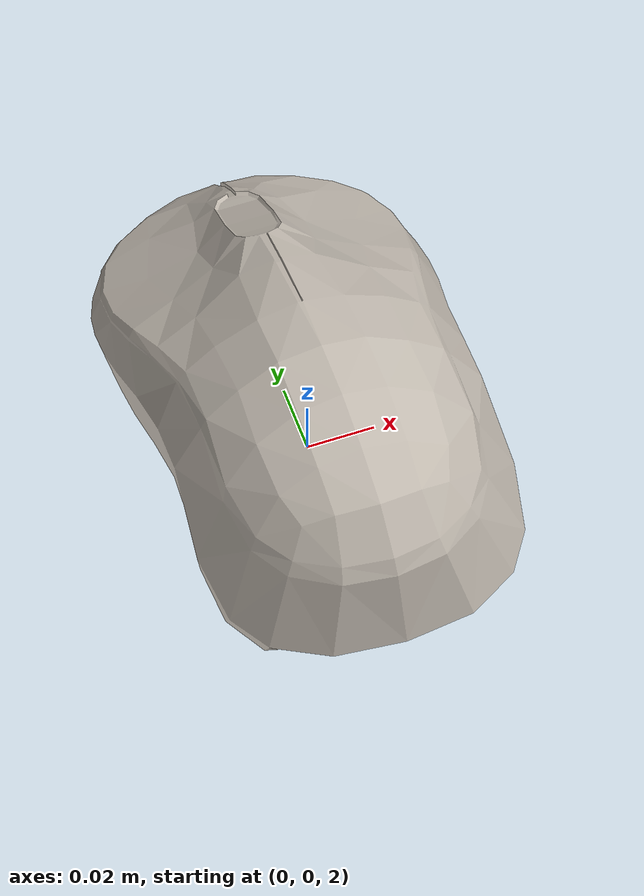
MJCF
<mujoco model="mouse">
  <compiler meshdir="./" fitaabb="true" />

  <visual>
    <headlight diffuse="0.6 0.6 0.6" ambient="0.1 0.1 0.1" specular="0 0 0" />
    <rgba haze="0.15 0.25 0.35 1" />
    <global azimuth="120" elevation="-20" />
  </visual>

  <asset>
    <texture name="mouse_texture" type="2d" file="./logitech_mouse_texture.png" />
    <material name="mouse_mat" texture="mouse_texture" specular="0.5" shininess="0.5" />
    <mesh name="mouse_obj" file="logitech_mouse.obj" scale="0.01 0.01 0.01" />

    <!-- Sky -->
    <texture type="skybox" builtin="gradient" rgb1="0.1 0.2 0.3" rgb2="0 0 0" width="512"
      height="3072" />
    <!-- Ground -->
    <texture type="2d" name="groundplane" builtin="checker" mark="edge" rgb1="0.3 0.4 0.5"
      rgb2="0.1 0.2 0.3" markrgb="0.8 0.8 0.8" width="300" height="300" />
    <material name="groundplane" texture="groundplane" texuniform="true" texrepeat="2 2"
      reflectance="0.2" />
  </asset>

  <worldbody>
    <light pos="0 0 3" dir="0 0 -1" directional="true" diffuse="1 1 1" />
    <geom name="floor" size="0 0 0.05" type="plane" material="groundplane" />

    <body name="mouse" pos="0 0 2" quat="0 0 1 1">
      <joint name="mouse_free" type="free" />
      <geom mesh="mouse_obj" material="mouse_mat" type="mesh" contype="0" conaffinity="1" group="2" />
    </body>
  </worldbody>
</mujoco>
